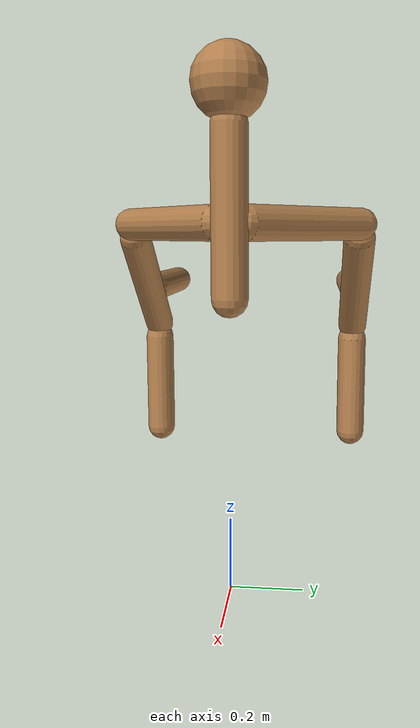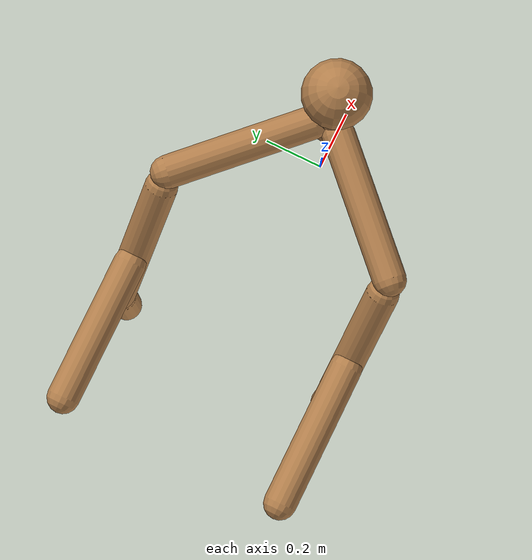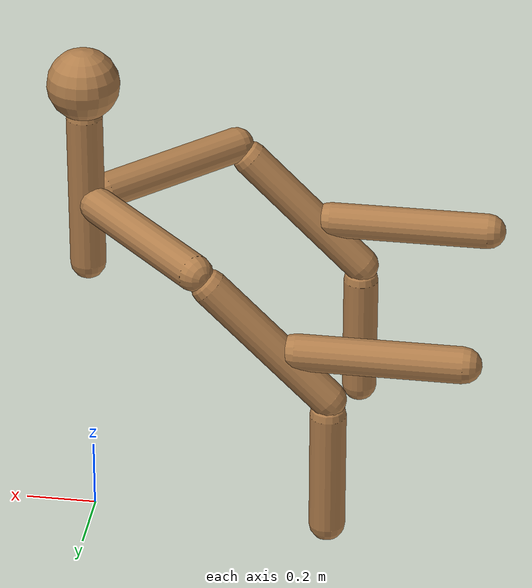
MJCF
<?xml version='1.0' encoding='UTF-8'?>
<!-- Universal Animal Template: unimal -->
<mujoco model="unimal">
  <compiler angle="degree"/>
  <size njmax="2000" nconmax="500"/>
  <option timestep=".005">
    <flag filterparent="disable"/>
  </option>
  <!-- Common defaults to make search space tractable -->
  <default>
    <!-- Define motor defaults -->
    <motor ctrlrange="-1 1" ctrllimited="true"/>
    <!-- Define joint defaults -->
    <default class="normal_joint">
      <joint type="hinge" damping="1" stiffness="1" armature="1" limited="true" range="-120 120" solimplimit="0 0.99 0.01"/>
    </default>
    <default class="walker_joint">
      <joint type="hinge" damping="0.2" stiffness="1" armature=".01" limited="true" range="-120 120" solimplimit="0 0.99 0.01"/>
    </default>
    <default class="stiff_joint">
      <joint type="hinge" damping="5" stiffness="10" armature=".01" limited="true" solimplimit="0 0.99 0.01"/>
    </default>
    <default class="free">
      <joint limited="false" damping="0" armature="0" stiffness="0"/>
    </default>
    <default class="growth_site">
      <site size="1e-6 1e-6 1e-6"/>
    </default>
    <default class="torso_growth_site">
      <site size="1e-6 1e-6 1e-6"/>
    </default>
    <default class="mirror_growth_site">
      <site size="1e-6 1e-6 1e-6"/>
    </default>
    <default class="btm_pos_site">
      <site size="1e-6 1e-6 1e-6"/>
    </default>
    <default class="box_face_site">
      <site size="1e-6 1e-6 1e-6"/>
    </default>
    <default class="imu_vel">
      <site type="box" size="0.05" rgba="1 0 0 0"/>
    </default>
    <default class="touch_site">
      <site group="3" rgba="0 0 1 .3"/>
    </default>
    <default class="food_site">
      <site material="food" size="0.15"/>
    </default>
    <!-- Define geom defaults -->
    <geom type="capsule" condim="3" friction="0.7 0.1 0.1" material="self"/>
  </default>
  <worldbody>
    <light diffuse="1 1 1" directional="true" exponent="1" pos="0 0 8" specular="0.1 0.1 0.1" dir="0 0 -1"/>
    <!-- Programatically generated xml goes here -->
    <body name="torso/0" pos="0 0 1.36">
      <joint name="root" type="free" class="free"/>
      <site name="root" class="imu_vel"/>
      <geom name="torso/0" type="sphere" size="0.1" condim="3" density="1000"/>
      <camera name="side" pos="0 -7 2" xyaxes="1 0 0 0 1 2" mode="trackcom"/>
      <site name="torso/0" class="growth_site" pos="0 0 0"/>
      <site name="torso/btm_pos/0" class="btm_pos_site" pos="0 0 -0.1"/>
      <site name="torso/touch/0" class="touch_site" size="0.11"/>
      <site name="torso/vertical/0" class="torso_growth_site" pos="0 0 -0.1"/>
      <body name="limb/0" pos="0.0 0.0 -0.1">
        <joint name="limbx/0" type="hinge" class="normal_joint" range="-30 0" pos="0.0 0.0 0.05" axis="1.0 0.0 0.0"/>
        <joint name="limby/0" type="hinge" class="normal_joint" range="-90 0" pos="0.0 0.0 0.05" axis="0.0 1.0 0.0"/>
        <geom name="limb/0" type="capsule" fromto="0.0 0.0 0.0 0.0 0.0 -0.45" size="0.05" density="700"/>
        <site name="limb/mid/0" class="growth_site" pos="0.0 0.0 -0.25"/>
        <site name="limb/btm/0" class="growth_site" pos="0.0 0.0 -0.45"/>
        <site name="limb/btm_pos/0" class="btm_pos_site" pos="0.0 0.0 -0.45"/>
        <site name="limb/touch/0" class="touch_site" size="0.060000000000000005" fromto="0.0 0.0 0.0 0.0 0.0 -0.45" type="capsule"/>
        <body name="limb/8" pos="-0.04 0.04 -0.25">
          <joint name="limbx/8" type="hinge" class="normal_joint" range="-45 0" pos="0.04 -0.04 0.0" axis="0.5 0.5 -0.7071"/>
          <joint name="limby/8" type="hinge" class="normal_joint" range="-45 0" pos="0.04 -0.04 0.0" axis="0.5 0.5 0.7071"/>
          <geom name="limb/8" type="capsule" fromto="0.0 0.0 0.0 -0.32 0.32 0.0" size="0.05" density="700"/>
          <site name="limb/mid/8" class="mirror_growth_site" pos="-0.18 0.18 0.0"/>
          <site name="limb/btm/8" class="mirror_growth_site" pos="-0.32 0.32 0.0"/>
          <site name="limb/btm_pos/8" class="btm_pos_site" pos="-0.32 0.32 0.0"/>
          <site name="limb/touch/8" class="touch_site" size="0.060000000000000005" fromto="0.0 0.0 0.0 -0.32 0.32 0.0" type="capsule"/>
          <body name="limb/27" pos="-0.36 0.32 -0.04">
            <joint name="limby/27" type="hinge" class="normal_joint" range="-90 0" pos="0.04 0.0 0.04" axis="0.0 1.0 0.0"/>
            <geom name="limb/27" type="capsule" fromto="0.0 0.0 0.0 -0.32 0.0 -0.32" size="0.05" density="700"/>
            <site name="limb/mid/27" class="mirror_growth_site" pos="-0.18 0.0 -0.18"/>
            <site name="limb/btm/27" class="mirror_growth_site" pos="-0.32 0.0 -0.32"/>
            <site name="limb/btm_pos/27" class="btm_pos_site" pos="-0.35 0.0 -0.35"/>
            <site name="limb/touch/27" class="touch_site" size="0.060000000000000005" fromto="0.0 0.0 0.0 -0.32 0.0 -0.32" type="capsule"/>
            <body name="limb/29" pos="-0.32 0.0 -0.37">
              <joint name="limby/29" type="hinge" class="normal_joint" range="-60 30" pos="0.0 0.0 0.05" axis="0.0 1.0 0.0"/>
              <geom name="limb/29" type="capsule" fromto="0.0 0.0 0.0 0.0 0.0 -0.35" size="0.05" density="700"/>
              <site name="limb/mid/29" class="mirror_growth_site" pos="0.0 0.0 -0.2"/>
              <site name="limb/btm/29" class="mirror_growth_site" pos="0.0 0.0 -0.35"/>
              <site name="limb/btm_pos/29" class="btm_pos_site" pos="0.0 0.0 -0.4"/>
              <site name="limb/touch/29" class="touch_site" size="0.060000000000000005" fromto="0.0 0.0 0.0 0.0 0.0 -0.35" type="capsule"/>
            </body>
            <body name="limb/31" pos="-0.22999999999999998 0.0 -0.18">
              <joint name="limby/31" type="hinge" class="normal_joint" range="-45 45" pos="0.05 0.0 0.0" axis="0.0 1.0 0.0"/>
              <geom name="limb/31" type="capsule" fromto="0.0 0.0 0.0 -0.45 0.0 0.0" size="0.05" density="700"/>
              <site name="limb/mid/31" class="mirror_growth_site" pos="-0.25 0.0 0.0"/>
              <site name="limb/btm/31" class="mirror_growth_site" pos="-0.45 0.0 0.0"/>
              <site name="limb/btm_pos/31" class="btm_pos_site" pos="-0.5 0.0 0.0"/>
              <site name="limb/touch/31" class="touch_site" size="0.060000000000000005" fromto="0.0 0.0 0.0 -0.45 0.0 0.0" type="capsule"/>
            </body>
          </body>
        </body>
        <body name="limb/9" pos="-0.04 -0.04 -0.25">
          <joint name="limbx/9" type="hinge" class="normal_joint" range="-45 0" pos="0.04 0.04 0.0" axis="0.5 -0.5 -0.7071"/>
          <joint name="limby/9" type="hinge" class="normal_joint" range="-45 0" pos="0.04 0.04 0.0" axis="-0.5 0.5 -0.7071"/>
          <geom name="limb/9" type="capsule" fromto="0.0 0.0 0.0 -0.32 -0.32 0.0" size="0.05" density="700"/>
          <site name="limb/mid/9" class="mirror_growth_site" pos="-0.18 -0.18 0.0"/>
          <site name="limb/btm/9" class="mirror_growth_site" pos="-0.32 -0.32 0.0"/>
          <site name="limb/btm_pos/9" class="btm_pos_site" pos="-0.32 -0.32 0.0"/>
          <site name="limb/touch/9" class="touch_site" size="0.060000000000000005" fromto="0.0 0.0 0.0 -0.32 -0.32 0.0" type="capsule"/>
          <body name="limb/28" pos="-0.36 -0.32 -0.04">
            <joint name="limby/28" type="hinge" class="normal_joint" range="-90 0" pos="0.04 0.0 0.04" axis="0.0 1.0 0.0"/>
            <geom name="limb/28" type="capsule" fromto="0.0 0.0 0.0 -0.32 0.0 -0.32" size="0.05" density="700"/>
            <site name="limb/mid/28" class="mirror_growth_site" pos="-0.18 0.0 -0.18"/>
            <site name="limb/btm/28" class="mirror_growth_site" pos="-0.32 0.0 -0.32"/>
            <site name="limb/btm_pos/28" class="btm_pos_site" pos="-0.35 0.0 -0.35"/>
            <site name="limb/touch/28" class="touch_site" size="0.060000000000000005" fromto="0.0 0.0 0.0 -0.32 0.0 -0.32" type="capsule"/>
            <body name="limb/30" pos="-0.32 0.0 -0.37">
              <joint name="limby/30" type="hinge" class="normal_joint" range="-60 30" pos="0.0 0.0 0.05" axis="0.0 1.0 0.0"/>
              <geom name="limb/30" type="capsule" fromto="0.0 0.0 0.0 0.0 0.0 -0.35" size="0.05" density="700"/>
              <site name="limb/mid/30" class="mirror_growth_site" pos="0.0 0.0 -0.2"/>
              <site name="limb/btm/30" class="mirror_growth_site" pos="0.0 0.0 -0.35"/>
              <site name="limb/btm_pos/30" class="btm_pos_site" pos="0.0 0.0 -0.4"/>
              <site name="limb/touch/30" class="touch_site" size="0.060000000000000005" fromto="0.0 0.0 0.0 0.0 0.0 -0.35" type="capsule"/>
            </body>
            <body name="limb/32" pos="-0.22999999999999998 0.0 -0.18">
              <joint name="limby/32" type="hinge" class="normal_joint" range="-45 45" pos="0.05 0.0 0.0" axis="0.0 1.0 0.0"/>
              <geom name="limb/32" type="capsule" fromto="0.0 0.0 0.0 -0.45 0.0 0.0" size="0.05" density="700"/>
              <site name="limb/mid/32" class="mirror_growth_site" pos="-0.25 0.0 0.0"/>
              <site name="limb/btm/32" class="mirror_growth_site" pos="-0.45 0.0 0.0"/>
              <site name="limb/btm_pos/32" class="btm_pos_site" pos="-0.5 0.0 0.0"/>
              <site name="limb/touch/32" class="touch_site" size="0.060000000000000005" fromto="0.0 0.0 0.0 -0.45 0.0 0.0" type="capsule"/>
            </body>
          </body>
        </body>
      </body>
    </body>
  </worldbody>
  <actuator>
    <motor joint="limbx/0" gear="250" name="limbx/0"/>
    <motor joint="limby/0" gear="300" name="limby/0"/>
    <motor joint="limbx/8" gear="250" name="limbx/8"/>
    <motor joint="limby/8" gear="150" name="limby/8"/>
    <motor joint="limby/27" gear="200" name="limby/27"/>
    <motor joint="limby/29" gear="200" name="limby/29"/>
    <motor joint="limby/31" gear="200" name="limby/31"/>
    <motor joint="limbx/9" gear="250" name="limbx/9"/>
    <motor joint="limby/9" gear="150" name="limby/9"/>
    <motor joint="limby/28" gear="200" name="limby/28"/>
    <motor joint="limby/30" gear="200" name="limby/30"/>
    <motor joint="limby/32" gear="200" name="limby/32"/>
  </actuator>
  <sensor>
    <accelerometer name="torso_accel" site="root"/>
    <gyro name="torso_gyro" site="root"/>
    <velocimeter name="torso_vel" site="root"/>
    <subtreeangmom name="unimal_am" body="torso/0"/>
    <touch name="torso/0" site="torso/touch/0"/>
    <touch name="limb/0" site="limb/touch/0"/>
    <touch name="limb/8" site="limb/touch/8"/>
    <touch name="limb/27" site="limb/touch/27"/>
    <touch name="limb/29" site="limb/touch/29"/>
    <touch name="limb/31" site="limb/touch/31"/>
    <touch name="limb/9" site="limb/touch/9"/>
    <touch name="limb/28" site="limb/touch/28"/>
    <touch name="limb/30" site="limb/touch/30"/>
    <touch name="limb/32" site="limb/touch/32"/>
  </sensor>
  <!-- Add hfield assets -->
  <asset/>
  <!-- List of contacts to exclude -->
  <contact>
    <exclude name="limb/8:limb/9" body1="limb/8" body2="limb/9"/>
  </contact>
  <!-- Define material, texture etc -->
  <asset>
    <material name="grid" texture="grid" texrepeat="1 1" texuniform="true" reflectance="0.1"/>
    <material name="hfield" texture="hfield" texrepeat="1 1" texuniform="true" reflectance="0.1"/>
    <material name="wall" texture="wall" texrepeat="1 1" texuniform="true" reflectance=".5"/>
    <material name="platform" texture="platform" texrepeat="1 1" texuniform="true" reflectance=".5"/>
    <material name="boundary" texture="boundary" texrepeat="1 1" texuniform="true" reflectance=".5"/>
    <material name="jump" texture="jump" texrepeat="1 1" texuniform="true" reflectance=".5"/>
    <material name="goal" rgba="1 0 0 1"/>
    <material name="food" rgba="0 0 1 1" emission="1"/>
    <material name="init_position" rgba="0 1 0 0.7"/>
    <material name="self" rgba=".7 .5 .3 1"/>
    <material name="self_invisible" rgba=".7 .5 .3 0"/>
    <material name="self_default" rgba=".7 .5 .3 1"/>
    <material name="self_highlight" rgba="0 .5 .3 1"/>
    <material name="effector" rgba=".7 .4 .2 1"/>
    <material name="effector_default" rgba=".7 .4 .2 1"/>
    <material name="effector_highlight" rgba="0 .5 .3 1"/>
    <material name="decoration" rgba=".3 .5 .7 1"/>
    <material name="eye" rgba="0 .2 1 1"/>
    <material name="target" rgba=".6 .3 .3 1"/>
    <material name="target_default" rgba=".6 .3 .3 1"/>
    <material name="target_highlight" rgba=".6 .3 .3 .4"/>
    <material name="site" rgba=".5 .5 .5 .3"/>
    <material name="ball" texture="ball"/>
  </asset>
  <asset>
    <texture name="grid" type="2d" builtin="checker" rgb1="0.4 0.4 0.4" rgb2="0.4 0.4 0.4" width="300" height="300" mark="edge" markrgb="0.2 0.2 0.2"/>
    <texture name="hfield" type="2d" builtin="checker" rgb1="0.4 0.4 0.4" rgb2="0.4 0.4 0.4" width="300" height="300" mark="edge" markrgb="0.2 0.2 0.2"/>
    <texture name="wall" type="2d" builtin="flat" rgb1="0.9 0.7 0" rgb2="0.9 0.7 0" width="300" height="300"/>
    <texture name="platform" type="2d" builtin="flat" rgb1="0.3 0 0.8" rgb2="0.3 0 0.8" width="300" height="300"/>
    <texture name="boundary" type="2d" builtin="flat" rgb1="0.3 0.3 0.3" rgb2="0.3 0.3 0.3" width="300" height="300"/>
    <texture name="jump" type="2d" builtin="flat" rgb1="0.3 0.3 0.3" rgb2="0.3 0.3 0.3" width="300" height="300"/>
    <texture name="skybox" type="skybox" builtin="gradient" rgb1="1 1 1" rgb2="0.6 0.6 0.6" width="800" height="800"/>
    <texture name="ball" builtin="checker" mark="cross" width="151" height="151" rgb1="0.1 0.1 0.1" rgb2="0.9 0.9 0.9" markrgb="1 1 1"/>
  </asset>
  <visual>
    <headlight ambient="0.6 0.6 0.6" diffuse="0.3 0.3 0.3" specular="0 0 0"/>
    <map znear=".01" shadowclip="0.5"/>
    <quality shadowsize="16384"/>
  </visual>
</mujoco>
